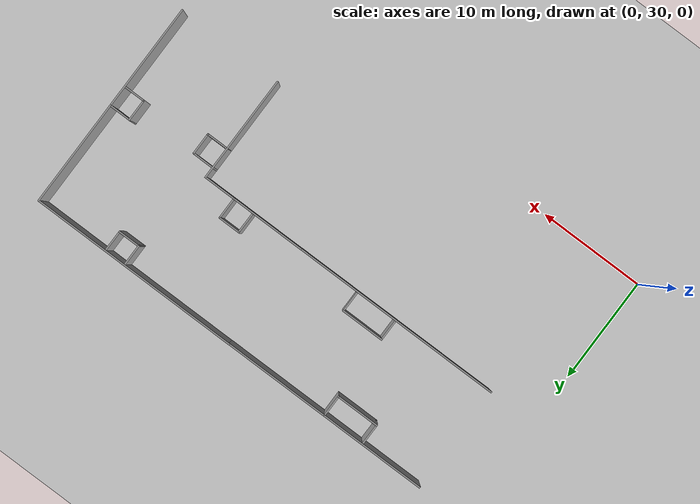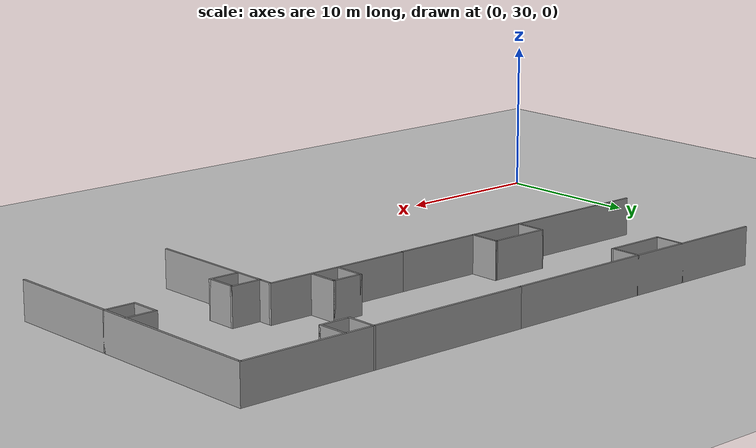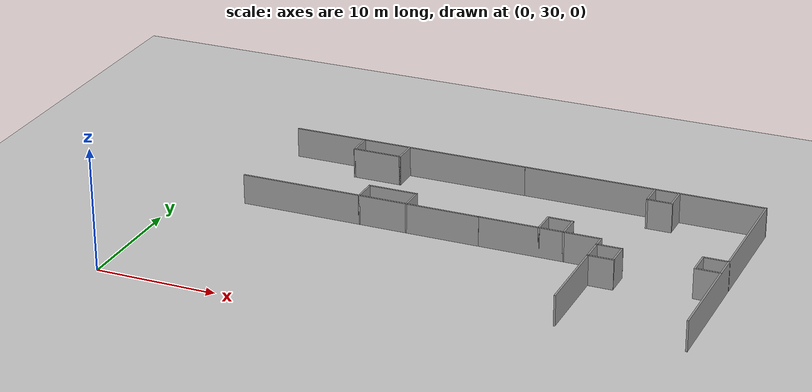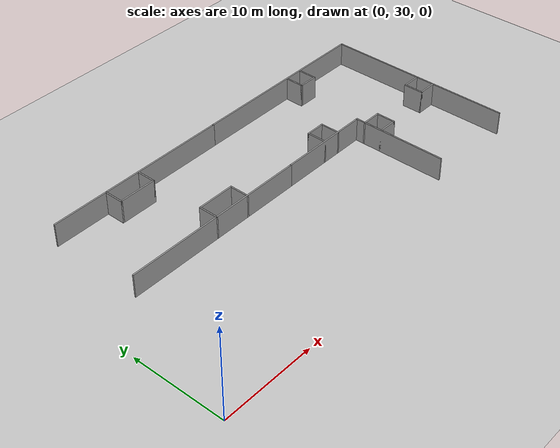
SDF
<sdf version="1.6">
 <world name="default">
  <model name="ground_plane">
   <static>1</static>
   <link name="link">
    <collision name="collision">
     <geometry><plane><normal>0 0 1</normal><size>100 100</size></plane></geometry>
     <surface><friction><ode><mu>100</mu><mu2>50</mu2></ode></friction></surface>
    </collision>
    <visual name="visual">
     <cast_shadows>0</cast_shadows>
     <geometry><plane><normal>0 0 1</normal><size>100 100</size></plane></geometry>
     <material>
      <script><uri>file://media/materials/scripts/gazebo.material</uri><name>Gazebo/Grey</name></script>
     </material>
    </visual>
   </link>
  </model>
  <model name="part_l_2">
   <link name="Wall_27">
    <pose>-0.000179 -10 0 0 -0 0</pose>
    <visual name="Wall_27_Visual">
     <pose>0 0 1.25 0 -0 0</pose>
     <geometry><box><size>20.15 0.15 2.5</size></box></geometry>
     <material>
      <script><uri>file://media/materials/scripts/gazebo.material</uri><name>Gazebo/Grey</name></script>
      <ambient>1 1 1 1</ambient>
      <diffuse>0.7 0.7 0.7 1</diffuse>
      <specular>0.01 0.01 0.01 1</specular>
      <emissive>0 0 0 1</emissive>
     </material>
    </visual>
    <collision name="Wall_27_Collision">
     <pose>0 0 1.25 0 -0 0</pose>
     <geometry><box><size>20.15 0.15 2.5</size></box></geometry>
     <surface>
      <friction>
       <ode><mu>1</mu><mu2>1</mu2><fdir1>0 0 0</fdir1><slip1>0</slip1><slip2>0</slip2></ode>
       <torsional>
        <coefficient>1</coefficient>
        <patch_radius>0</patch_radius>
        <surface_radius>0</surface_radius>
        <use_patch_radius>1</use_patch_radius>
        <ode><slip>0</slip></ode>
       </torsional>
      </friction>
      <bounce><restitution_coefficient>0</restitution_coefficient><threshold>1e+06</threshold></bounce>
      <contact>
       <collide_without_contact>0</collide_without_contact>
       <collide_without_contact_bitmask>1</collide_without_contact_bitmask>
       <collide_bitmask>1</collide_bitmask>
       <ode>
        <soft_cfm>0</soft_cfm>
        <soft_erp>0.2</soft_erp>
        <kp>1e+13</kp>
        <kd>1</kd>
        <max_vel>0.01</max_vel>
        <min_depth>0</min_depth>
       </ode>
       <bullet>
        <split_impulse>1</split_impulse>
        <split_impulse_penetration_threshold>-0.01</split_impulse_penetration_threshold>
        <soft_cfm>0</soft_cfm>
        <soft_erp>0.2</soft_erp>
        <kp>1e+13</kp>
        <kd>1</kd>
       </bullet>
      </contact>
     </surface>
    </collision>
   </link>
   <link name="Wall_28">
    <pose>9.99982 0 0 0 -0 1.5708</pose>
    <visual name="Wall_28_Visual">
     <pose>0 0 1.25 0 -0 0</pose>
     <geometry><box><size>20.15 0.15 2.5</size></box></geometry>
     <material>
      <script><uri>file://media/materials/scripts/gazebo.material</uri><name>Gazebo/Grey</name></script>
      <ambient>1 1 1 1</ambient>
      <diffuse>0.7 0.7 0.7 1</diffuse>
      <specular>0.01 0.01 0.01 1</specular>
      <emissive>0 0 0 1</emissive>
     </material>
    </visual>
    <collision name="Wall_28_Collision">
     <pose>0 0 1.25 0 -0 0</pose>
     <geometry><box><size>20.15 0.15 2.5</size></box></geometry>
     <surface>
      <friction>
       <ode><mu>1</mu><mu2>1</mu2><fdir1>0 0 0</fdir1><slip1>0</slip1><slip2>0</slip2></ode>
       <torsional>
        <coefficient>1</coefficient>
        <patch_radius>0</patch_radius>
        <surface_radius>0</surface_radius>
        <use_patch_radius>1</use_patch_radius>
        <ode><slip>0</slip></ode>
       </torsional>
      </friction>
      <bounce><restitution_coefficient>0</restitution_coefficient><threshold>1e+06</threshold></bounce>
      <contact>
       <collide_without_contact>0</collide_without_contact>
       <collide_without_contact_bitmask>1</collide_without_contact_bitmask>
       <collide_bitmask>1</collide_bitmask>
       <ode>
        <soft_cfm>0</soft_cfm>
        <soft_erp>0.2</soft_erp>
        <kp>1e+13</kp>
        <kd>1</kd>
        <max_vel>0.01</max_vel>
        <min_depth>0</min_depth>
       </ode>
       <bullet>
        <split_impulse>1</split_impulse>
        <split_impulse_penetration_threshold>-0.01</split_impulse_penetration_threshold>
        <soft_cfm>0</soft_cfm>
        <soft_erp>0.2</soft_erp>
        <kp>1e+13</kp>
        <kd>1</kd>
       </bullet>
      </contact>
     </surface>
    </collision>
   </link>
   <link name="Wall_30">
    <pose>-5.00018 0 0 0 -0 0</pose>
    <visual name="Wall_30_Visual">
     <pose>0 0 1.25 0 -0 0</pose>
     <geometry><box><size>10.15 0.15 2.5</size></box></geometry>
     <material>
      <script><uri>file://media/materials/scripts/gazebo.material</uri><name>Gazebo/Grey</name></script>
      <ambient>1 1 1 1</ambient>
      <diffuse>0.7 0.7 0.7 1</diffuse>
      <specular>0.01 0.01 0.01 1</specular>
      <emissive>0 0 0 1</emissive>
     </material>
    </visual>
    <collision name="Wall_30_Collision">
     <pose>0 0 1.25 0 -0 0</pose>
     <geometry><box><size>10.15 0.15 2.5</size></box></geometry>
     <surface>
      <friction>
       <ode><mu>1</mu><mu2>1</mu2><fdir1>0 0 0</fdir1><slip1>0</slip1><slip2>0</slip2></ode>
       <torsional>
        <coefficient>1</coefficient>
        <patch_radius>0</patch_radius>
        <surface_radius>0</surface_radius>
        <use_patch_radius>1</use_patch_radius>
        <ode><slip>0</slip></ode>
       </torsional>
      </friction>
      <bounce><restitution_coefficient>0</restitution_coefficient><threshold>1e+06</threshold></bounce>
      <contact>
       <collide_without_contact>0</collide_without_contact>
       <collide_without_contact_bitmask>1</collide_without_contact_bitmask>
       <collide_bitmask>1</collide_bitmask>
       <ode>
        <soft_cfm>0</soft_cfm>
        <soft_erp>0.2</soft_erp>
        <kp>1e+13</kp>
        <kd>1</kd>
        <max_vel>0.01</max_vel>
        <min_depth>0</min_depth>
       </ode>
       <bullet>
        <split_impulse>1</split_impulse>
        <split_impulse_penetration_threshold>-0.01</split_impulse_penetration_threshold>
        <soft_cfm>0</soft_cfm>
        <soft_erp>0.2</soft_erp>
        <kp>1e+13</kp>
        <kd>1</kd>
       </bullet>
      </contact>
     </surface>
    </collision>
   </link>
   <link name="Wall_31">
    <pose>-0.000179 5 0 0 -0 1.5708</pose>
    <visual name="Wall_31_Visual">
     <pose>0 0 1.25 0 -0 0</pose>
     <geometry><box><size>10.15 0.15 2.5</size></box></geometry>
     <material>
      <script><uri>file://media/materials/scripts/gazebo.material</uri><name>Gazebo/Grey</name></script>
      <ambient>1 1 1 1</ambient>
      <diffuse>0.7 0.7 0.7 1</diffuse>
      <specular>0.01 0.01 0.01 1</specular>
      <emissive>0 0 0 1</emissive>
     </material>
    </visual>
    <collision name="Wall_31_Collision">
     <pose>0 0 1.25 0 -0 0</pose>
     <geometry><box><size>10.15 0.15 2.5</size></box></geometry>
     <surface>
      <friction>
       <ode><mu>1</mu><mu2>1</mu2><fdir1>0 0 0</fdir1><slip1>0</slip1><slip2>0</slip2></ode>
       <torsional>
        <coefficient>1</coefficient>
        <patch_radius>0</patch_radius>
        <surface_radius>0</surface_radius>
        <use_patch_radius>1</use_patch_radius>
        <ode><slip>0</slip></ode>
       </torsional>
      </friction>
      <bounce><restitution_coefficient>0</restitution_coefficient><threshold>1e+06</threshold></bounce>
      <contact>
       <collide_without_contact>0</collide_without_contact>
       <collide_without_contact_bitmask>1</collide_without_contact_bitmask>
       <collide_bitmask>1</collide_bitmask>
       <ode>
        <soft_cfm>0</soft_cfm>
        <soft_erp>0.2</soft_erp>
        <kp>1e+13</kp>
        <kd>1</kd>
        <max_vel>0.01</max_vel>
        <min_depth>0</min_depth>
       </ode>
       <bullet>
        <split_impulse>1</split_impulse>
        <split_impulse_penetration_threshold>-0.01</split_impulse_penetration_threshold>
        <soft_cfm>0</soft_cfm>
        <soft_erp>0.2</soft_erp>
        <kp>1e+13</kp>
        <kd>1</kd>
       </bullet>
      </contact>
     </surface>
    </collision>
   </link>
   <link name="Wall_33">
    <pose>-2.00018 -9 0 0 -0 1.5708</pose>
    <visual name="Wall_33_Visual">
     <pose>0 0 1.25 0 -0 0</pose>
     <geometry><box><size>2.15 0.15 2.5</size></box></geometry>
     <material>
      <script><uri>file://media/materials/scripts/gazebo.material</uri><name>Gazebo/Grey</name></script>
      <ambient>1 1 1 1</ambient>
      <diffuse>0.7 0.7 0.7 1</diffuse>
      <specular>0.01 0.01 0.01 1</specular>
      <emissive>0 0 0 1</emissive>
     </material>
    </visual>
    <collision name="Wall_33_Collision">
     <pose>0 0 1.25 0 -0 0</pose>
     <geometry><box><size>2.15 0.15 2.5</size></box></geometry>
     <surface>
      <friction>
       <ode><mu>1</mu><mu2>1</mu2><fdir1>0 0 0</fdir1><slip1>0</slip1><slip2>0</slip2></ode>
       <torsional>
        <coefficient>1</coefficient>
        <patch_radius>0</patch_radius>
        <surface_radius>0</surface_radius>
        <use_patch_radius>1</use_patch_radius>
        <ode><slip>0</slip></ode>
       </torsional>
      </friction>
      <bounce><restitution_coefficient>0</restitution_coefficient><threshold>1e+06</threshold></bounce>
      <contact>
       <collide_without_contact>0</collide_without_contact>
       <collide_without_contact_bitmask>1</collide_without_contact_bitmask>
       <collide_bitmask>1</collide_bitmask>
       <ode>
        <soft_cfm>0</soft_cfm>
        <soft_erp>0.2</soft_erp>
        <kp>1e+13</kp>
        <kd>1</kd>
        <max_vel>0.01</max_vel>
        <min_depth>0</min_depth>
       </ode>
       <bullet>
        <split_impulse>1</split_impulse>
        <split_impulse_penetration_threshold>-0.01</split_impulse_penetration_threshold>
        <soft_cfm>0</soft_cfm>
        <soft_erp>0.2</soft_erp>
        <kp>1e+13</kp>
        <kd>1</kd>
       </bullet>
      </contact>
     </surface>
    </collision>
   </link>
   <link name="Wall_34">
    <pose>-1.00018 -8 0 0 -0 0</pose>
    <visual name="Wall_34_Visual">
     <pose>0 0 1.25 0 -0 0</pose>
     <geometry><box><size>2.15 0.15 2.5</size></box></geometry>
     <material>
      <script><uri>file://media/materials/scripts/gazebo.material</uri><name>Gazebo/Grey</name></script>
      <ambient>1 1 1 1</ambient>
      <diffuse>0.7 0.7 0.7 1</diffuse>
      <specular>0.01 0.01 0.01 1</specular>
      <emissive>0 0 0 1</emissive>
     </material>
    </visual>
    <collision name="Wall_34_Collision">
     <pose>0 0 1.25 0 -0 0</pose>
     <geometry><box><size>2.15 0.15 2.5</size></box></geometry>
     <surface>
      <friction>
       <ode><mu>1</mu><mu2>1</mu2><fdir1>0 0 0</fdir1><slip1>0</slip1><slip2>0</slip2></ode>
       <torsional>
        <coefficient>1</coefficient>
        <patch_radius>0</patch_radius>
        <surface_radius>0</surface_radius>
        <use_patch_radius>1</use_patch_radius>
        <ode><slip>0</slip></ode>
       </torsional>
      </friction>
      <bounce><restitution_coefficient>0</restitution_coefficient><threshold>1e+06</threshold></bounce>
      <contact>
       <collide_without_contact>0</collide_without_contact>
       <collide_without_contact_bitmask>1</collide_without_contact_bitmask>
       <collide_bitmask>1</collide_bitmask>
       <ode>
        <soft_cfm>0</soft_cfm>
        <soft_erp>0.2</soft_erp>
        <kp>1e+13</kp>
        <kd>1</kd>
        <max_vel>0.01</max_vel>
        <min_depth>0</min_depth>
       </ode>
       <bullet>
        <split_impulse>1</split_impulse>
        <split_impulse_penetration_threshold>-0.01</split_impulse_penetration_threshold>
        <soft_cfm>0</soft_cfm>
        <soft_erp>0.2</soft_erp>
        <kp>1e+13</kp>
        <kd>1</kd>
       </bullet>
      </contact>
     </surface>
    </collision>
   </link>
   <link name="Wall_35">
    <pose>-0.000179 -9 0 0 0 -1.5708</pose>
    <visual name="Wall_35_Visual">
     <pose>0 0 1.25 0 -0 0</pose>
     <geometry><box><size>2.15 0.15 2.5</size></box></geometry>
     <material>
      <script><uri>file://media/materials/scripts/gazebo.material</uri><name>Gazebo/Grey</name></script>
      <ambient>1 1 1 1</ambient>
      <diffuse>0.7 0.7 0.7 1</diffuse>
      <specular>0.01 0.01 0.01 1</specular>
      <emissive>0 0 0 1</emissive>
     </material>
    </visual>
    <collision name="Wall_35_Collision">
     <pose>0 0 1.25 0 -0 0</pose>
     <geometry><box><size>2.15 0.15 2.5</size></box></geometry>
     <surface>
      <friction>
       <ode><mu>1</mu><mu2>1</mu2><fdir1>0 0 0</fdir1><slip1>0</slip1><slip2>0</slip2></ode>
       <torsional>
        <coefficient>1</coefficient>
        <patch_radius>0</patch_radius>
        <surface_radius>0</surface_radius>
        <use_patch_radius>1</use_patch_radius>
        <ode><slip>0</slip></ode>
       </torsional>
      </friction>
      <bounce><restitution_coefficient>0</restitution_coefficient><threshold>1e+06</threshold></bounce>
      <contact>
       <collide_without_contact>0</collide_without_contact>
       <collide_without_contact_bitmask>1</collide_without_contact_bitmask>
       <collide_bitmask>1</collide_bitmask>
       <ode>
        <soft_cfm>0</soft_cfm>
        <soft_erp>0.2</soft_erp>
        <kp>1e+13</kp>
        <kd>1</kd>
        <max_vel>0.01</max_vel>
        <min_depth>0</min_depth>
       </ode>
       <bullet>
        <split_impulse>1</split_impulse>
        <split_impulse_penetration_threshold>-0.01</split_impulse_penetration_threshold>
        <soft_cfm>0</soft_cfm>
        <soft_erp>0.2</soft_erp>
        <kp>1e+13</kp>
        <kd>1</kd>
       </bullet>
      </contact>
     </surface>
    </collision>
   </link>
   <link name="Wall_37">
    <pose>8.99982 -1 0 0 -0 3.14159</pose>
    <visual name="Wall_37_Visual">
     <pose>0 0 1.25 0 -0 0</pose>
     <geometry><box><size>2.15072 0.15 2.5</size></box></geometry>
     <material>
      <script><uri>file://media/materials/scripts/gazebo.material</uri><name>Gazebo/Grey</name></script>
      <ambient>1 1 1 1</ambient>
      <diffuse>0.7 0.7 0.7 1</diffuse>
      <specular>0.01 0.01 0.01 1</specular>
      <emissive>0 0 0 1</emissive>
     </material>
    </visual>
    <collision name="Wall_37_Collision">
     <pose>0 0 1.25 0 -0 0</pose>
     <geometry><box><size>2.15072 0.15 2.5</size></box></geometry>
     <surface>
      <friction>
       <ode><mu>1</mu><mu2>1</mu2><fdir1>0 0 0</fdir1><slip1>0</slip1><slip2>0</slip2></ode>
       <torsional>
        <coefficient>1</coefficient>
        <patch_radius>0</patch_radius>
        <surface_radius>0</surface_radius>
        <use_patch_radius>1</use_patch_radius>
        <ode><slip>0</slip></ode>
       </torsional>
      </friction>
      <bounce><restitution_coefficient>0</restitution_coefficient><threshold>1e+06</threshold></bounce>
      <contact>
       <collide_without_contact>0</collide_without_contact>
       <collide_without_contact_bitmask>1</collide_without_contact_bitmask>
       <collide_bitmask>1</collide_bitmask>
       <ode>
        <soft_cfm>0</soft_cfm>
        <soft_erp>0.2</soft_erp>
        <kp>1e+13</kp>
        <kd>1</kd>
        <max_vel>0.01</max_vel>
        <min_depth>0</min_depth>
       </ode>
       <bullet>
        <split_impulse>1</split_impulse>
        <split_impulse_penetration_threshold>-0.01</split_impulse_penetration_threshold>
        <soft_cfm>0</soft_cfm>
        <soft_erp>0.2</soft_erp>
        <kp>1e+13</kp>
        <kd>1</kd>
       </bullet>
      </contact>
     </surface>
    </collision>
   </link>
   <link name="Wall_38">
    <pose>7.99982 -2 0 0 0 -1.5708</pose>
    <visual name="Wall_38_Visual">
     <pose>0 0 1.25 0 -0 0</pose>
     <geometry><box><size>2.15 0.15 2.5</size></box></geometry>
     <material>
      <script><uri>file://media/materials/scripts/gazebo.material</uri><name>Gazebo/Grey</name></script>
      <ambient>1 1 1 1</ambient>
      <diffuse>0.7 0.7 0.7 1</diffuse>
      <specular>0.01 0.01 0.01 1</specular>
      <emissive>0 0 0 1</emissive>
     </material>
    </visual>
    <collision name="Wall_38_Collision">
     <pose>0 0 1.25 0 -0 0</pose>
     <geometry><box><size>2.15 0.15 2.5</size></box></geometry>
     <surface>
      <friction>
       <ode><mu>1</mu><mu2>1</mu2><fdir1>0 0 0</fdir1><slip1>0</slip1><slip2>0</slip2></ode>
       <torsional>
        <coefficient>1</coefficient>
        <patch_radius>0</patch_radius>
        <surface_radius>0</surface_radius>
        <use_patch_radius>1</use_patch_radius>
        <ode><slip>0</slip></ode>
       </torsional>
      </friction>
      <bounce><restitution_coefficient>0</restitution_coefficient><threshold>1e+06</threshold></bounce>
      <contact>
       <collide_without_contact>0</collide_without_contact>
       <collide_without_contact_bitmask>1</collide_without_contact_bitmask>
       <collide_bitmask>1</collide_bitmask>
       <ode>
        <soft_cfm>0</soft_cfm>
        <soft_erp>0.2</soft_erp>
        <kp>1e+13</kp>
        <kd>1</kd>
        <max_vel>0.01</max_vel>
        <min_depth>0</min_depth>
       </ode>
       <bullet>
        <split_impulse>1</split_impulse>
        <split_impulse_penetration_threshold>-0.01</split_impulse_penetration_threshold>
        <soft_cfm>0</soft_cfm>
        <soft_erp>0.2</soft_erp>
        <kp>1e+13</kp>
        <kd>1</kd>
       </bullet>
      </contact>
     </surface>
    </collision>
   </link>
   <link name="Wall_39">
    <pose>8.99982 -3 0 0 -0 0</pose>
    <visual name="Wall_39_Visual">
     <pose>0 0 1.25 0 -0 0</pose>
     <geometry><box><size>2.15 0.15 2.5</size></box></geometry>
     <material>
      <script><uri>file://media/materials/scripts/gazebo.material</uri><name>Gazebo/Grey</name></script>
      <ambient>1 1 1 1</ambient>
      <diffuse>0.7 0.7 0.7 1</diffuse>
      <specular>0.01 0.01 0.01 1</specular>
      <emissive>0 0 0 1</emissive>
     </material>
    </visual>
    <collision name="Wall_39_Collision">
     <pose>0 0 1.25 0 -0 0</pose>
     <geometry><box><size>2.15 0.15 2.5</size></box></geometry>
     <surface>
      <friction>
       <ode><mu>1</mu><mu2>1</mu2><fdir1>0 0 0</fdir1><slip1>0</slip1><slip2>0</slip2></ode>
       <torsional>
        <coefficient>1</coefficient>
        <patch_radius>0</patch_radius>
        <surface_radius>0</surface_radius>
        <use_patch_radius>1</use_patch_radius>
        <ode><slip>0</slip></ode>
       </torsional>
      </friction>
      <bounce><restitution_coefficient>0</restitution_coefficient><threshold>1e+06</threshold></bounce>
      <contact>
       <collide_without_contact>0</collide_without_contact>
       <collide_without_contact_bitmask>1</collide_without_contact_bitmask>
       <collide_bitmask>1</collide_bitmask>
       <ode>
        <soft_cfm>0</soft_cfm>
        <soft_erp>0.2</soft_erp>
        <kp>1e+13</kp>
        <kd>1</kd>
        <max_vel>0.01</max_vel>
        <min_depth>0</min_depth>
       </ode>
       <bullet>
        <split_impulse>1</split_impulse>
        <split_impulse_penetration_threshold>-0.01</split_impulse_penetration_threshold>
        <soft_cfm>0</soft_cfm>
        <soft_erp>0.2</soft_erp>
        <kp>1e+13</kp>
        <kd>1</kd>
       </bullet>
      </contact>
     </surface>
    </collision>
   </link>
   <link name="Wall_41">
    <pose>0.999821 5 0 0 -0 0</pose>
    <visual name="Wall_41_Visual">
     <pose>0 0 1.25 0 -0 0</pose>
     <geometry><box><size>2.15 0.15 2.5</size></box></geometry>
     <material>
      <script><uri>file://media/materials/scripts/gazebo.material</uri><name>Gazebo/Grey</name></script>
      <ambient>1 1 1 1</ambient>
      <diffuse>0.7 0.7 0.7 1</diffuse>
      <specular>0.01 0.01 0.01 1</specular>
      <emissive>0 0 0 1</emissive>
     </material>
    </visual>
    <collision name="Wall_41_Collision">
     <pose>0 0 1.25 0 -0 0</pose>
     <geometry><box><size>2.15 0.15 2.5</size></box></geometry>
     <surface>
      <friction>
       <ode><mu>1</mu><mu2>1</mu2><fdir1>0 0 0</fdir1><slip1>0</slip1><slip2>0</slip2></ode>
       <torsional>
        <coefficient>1</coefficient>
        <patch_radius>0</patch_radius>
        <surface_radius>0</surface_radius>
        <use_patch_radius>1</use_patch_radius>
        <ode><slip>0</slip></ode>
       </torsional>
      </friction>
      <bounce><restitution_coefficient>0</restitution_coefficient><threshold>1e+06</threshold></bounce>
      <contact>
       <collide_without_contact>0</collide_without_contact>
       <collide_without_contact_bitmask>1</collide_without_contact_bitmask>
       <collide_bitmask>1</collide_bitmask>
       <ode>
        <soft_cfm>0</soft_cfm>
        <soft_erp>0.2</soft_erp>
        <kp>1e+13</kp>
        <kd>1</kd>
        <max_vel>0.01</max_vel>
        <min_depth>0</min_depth>
       </ode>
       <bullet>
        <split_impulse>1</split_impulse>
        <split_impulse_penetration_threshold>-0.01</split_impulse_penetration_threshold>
        <soft_cfm>0</soft_cfm>
        <soft_erp>0.2</soft_erp>
        <kp>1e+13</kp>
        <kd>1</kd>
       </bullet>
      </contact>
     </surface>
    </collision>
   </link>
   <link name="Wall_42">
    <pose>1.99982 4 0 0 0 -1.5708</pose>
    <visual name="Wall_42_Visual">
     <pose>0 0 1.25 0 -0 0</pose>
     <geometry><box><size>2.15 0.15 2.5</size></box></geometry>
     <material>
      <script><uri>file://media/materials/scripts/gazebo.material</uri><name>Gazebo/Grey</name></script>
      <ambient>1 1 1 1</ambient>
      <diffuse>0.7 0.7 0.7 1</diffuse>
      <specular>0.01 0.01 0.01 1</specular>
      <emissive>0 0 0 1</emissive>
     </material>
    </visual>
    <collision name="Wall_42_Collision">
     <pose>0 0 1.25 0 -0 0</pose>
     <geometry><box><size>2.15 0.15 2.5</size></box></geometry>
     <surface>
      <friction>
       <ode><mu>1</mu><mu2>1</mu2><fdir1>0 0 0</fdir1><slip1>0</slip1><slip2>0</slip2></ode>
       <torsional>
        <coefficient>1</coefficient>
        <patch_radius>0</patch_radius>
        <surface_radius>0</surface_radius>
        <use_patch_radius>1</use_patch_radius>
        <ode><slip>0</slip></ode>
       </torsional>
      </friction>
      <bounce><restitution_coefficient>0</restitution_coefficient><threshold>1e+06</threshold></bounce>
      <contact>
       <collide_without_contact>0</collide_without_contact>
       <collide_without_contact_bitmask>1</collide_without_contact_bitmask>
       <collide_bitmask>1</collide_bitmask>
       <ode>
        <soft_cfm>0</soft_cfm>
        <soft_erp>0.2</soft_erp>
        <kp>1e+13</kp>
        <kd>1</kd>
        <max_vel>0.01</max_vel>
        <min_depth>0</min_depth>
       </ode>
       <bullet>
        <split_impulse>1</split_impulse>
        <split_impulse_penetration_threshold>-0.01</split_impulse_penetration_threshold>
        <soft_cfm>0</soft_cfm>
        <soft_erp>0.2</soft_erp>
        <kp>1e+13</kp>
        <kd>1</kd>
       </bullet>
      </contact>
     </surface>
    </collision>
   </link>
   <link name="Wall_43">
    <pose>0.999821 3 0 0 -0 3.14159</pose>
    <visual name="Wall_43_Visual">
     <pose>0 0 1.25 0 -0 0</pose>
     <geometry><box><size>2.15 0.15 2.5</size></box></geometry>
     <material>
      <script><uri>file://media/materials/scripts/gazebo.material</uri><name>Gazebo/Grey</name></script>
      <ambient>1 1 1 1</ambient>
      <diffuse>0.7 0.7 0.7 1</diffuse>
      <specular>0.01 0.01 0.01 1</specular>
      <emissive>0 0 0 1</emissive>
     </material>
    </visual>
    <collision name="Wall_43_Collision">
     <pose>0 0 1.25 0 -0 0</pose>
     <geometry><box><size>2.15 0.15 2.5</size></box></geometry>
     <surface>
      <friction>
       <ode><mu>1</mu><mu2>1</mu2><fdir1>0 0 0</fdir1><slip1>0</slip1><slip2>0</slip2></ode>
       <torsional>
        <coefficient>1</coefficient>
        <patch_radius>0</patch_radius>
        <surface_radius>0</surface_radius>
        <use_patch_radius>1</use_patch_radius>
        <ode><slip>0</slip></ode>
       </torsional>
      </friction>
      <bounce><restitution_coefficient>0</restitution_coefficient><threshold>1e+06</threshold></bounce>
      <contact>
       <collide_without_contact>0</collide_without_contact>
       <collide_without_contact_bitmask>1</collide_without_contact_bitmask>
       <collide_bitmask>1</collide_bitmask>
       <ode>
        <soft_cfm>0</soft_cfm>
        <soft_erp>0.2</soft_erp>
        <kp>1e+13</kp>
        <kd>1</kd>
        <max_vel>0.01</max_vel>
        <min_depth>0</min_depth>
       </ode>
       <bullet>
        <split_impulse>1</split_impulse>
        <split_impulse_penetration_threshold>-0.01</split_impulse_penetration_threshold>
        <soft_cfm>0</soft_cfm>
        <soft_erp>0.2</soft_erp>
        <kp>1e+13</kp>
        <kd>1</kd>
       </bullet>
      </contact>
     </surface>
    </collision>
   </link>
   <link name="Wall_45">
    <pose>-3.00018 -1 0 0 0 -1.5708</pose>
    <visual name="Wall_45_Visual">
     <pose>0 0 1.25 0 -0 0</pose>
     <geometry><box><size>2.15 0.15 2.5</size></box></geometry>
     <material>
      <script><uri>file://media/materials/scripts/gazebo.material</uri><name>Gazebo/Grey</name></script>
      <ambient>1 1 1 1</ambient>
      <diffuse>0.7 0.7 0.7 1</diffuse>
      <specular>0.01 0.01 0.01 1</specular>
      <emissive>0 0 0 1</emissive>
     </material>
    </visual>
    <collision name="Wall_45_Collision">
     <pose>0 0 1.25 0 -0 0</pose>
     <geometry><box><size>2.15 0.15 2.5</size></box></geometry>
     <surface>
      <friction>
       <ode><mu>1</mu><mu2>1</mu2><fdir1>0 0 0</fdir1><slip1>0</slip1><slip2>0</slip2></ode>
       <torsional>
        <coefficient>1</coefficient>
        <patch_radius>0</patch_radius>
        <surface_radius>0</surface_radius>
        <use_patch_radius>1</use_patch_radius>
        <ode><slip>0</slip></ode>
       </torsional>
      </friction>
      <bounce><restitution_coefficient>0</restitution_coefficient><threshold>1e+06</threshold></bounce>
      <contact>
       <collide_without_contact>0</collide_without_contact>
       <collide_without_contact_bitmask>1</collide_without_contact_bitmask>
       <collide_bitmask>1</collide_bitmask>
       <ode>
        <soft_cfm>0</soft_cfm>
        <soft_erp>0.2</soft_erp>
        <kp>1e+13</kp>
        <kd>1</kd>
        <max_vel>0.01</max_vel>
        <min_depth>0</min_depth>
       </ode>
       <bullet>
        <split_impulse>1</split_impulse>
        <split_impulse_penetration_threshold>-0.01</split_impulse_penetration_threshold>
        <soft_cfm>0</soft_cfm>
        <soft_erp>0.2</soft_erp>
        <kp>1e+13</kp>
        <kd>1</kd>
       </bullet>
      </contact>
     </surface>
    </collision>
   </link>
   <link name="Wall_46">
    <pose>-2.00018 -2 0 0 -0 0</pose>
    <visual name="Wall_46_Visual">
     <pose>0 0 1.25 0 -0 0</pose>
     <geometry><box><size>2.15 0.15 2.5</size></box></geometry>
     <material>
      <script><uri>file://media/materials/scripts/gazebo.material</uri><name>Gazebo/Grey</name></script>
      <ambient>1 1 1 1</ambient>
      <diffuse>0.7 0.7 0.7 1</diffuse>
      <specular>0.01 0.01 0.01 1</specular>
      <emissive>0 0 0 1</emissive>
     </material>
    </visual>
    <collision name="Wall_46_Collision">
     <pose>0 0 1.25 0 -0 0</pose>
     <geometry><box><size>2.15 0.15 2.5</size></box></geometry>
     <surface>
      <friction>
       <ode><mu>1</mu><mu2>1</mu2><fdir1>0 0 0</fdir1><slip1>0</slip1><slip2>0</slip2></ode>
       <torsional>
        <coefficient>1</coefficient>
        <patch_radius>0</patch_radius>
        <surface_radius>0</surface_radius>
        <use_patch_radius>1</use_patch_radius>
        <ode><slip>0</slip></ode>
       </torsional>
      </friction>
      <bounce><restitution_coefficient>0</restitution_coefficient><threshold>1e+06</threshold></bounce>
      <contact>
       <collide_without_contact>0</collide_without_contact>
       <collide_without_contact_bitmask>1</collide_without_contact_bitmask>
       <collide_bitmask>1</collide_bitmask>
       <ode>
        <soft_cfm>0</soft_cfm>
        <soft_erp>0.2</soft_erp>
        <kp>1e+13</kp>
        <kd>1</kd>
        <max_vel>0.01</max_vel>
        <min_depth>0</min_depth>
       </ode>
       <bullet>
        <split_impulse>1</split_impulse>
        <split_impulse_penetration_threshold>-0.01</split_impulse_penetration_threshold>
        <soft_cfm>0</soft_cfm>
        <soft_erp>0.2</soft_erp>
        <kp>1e+13</kp>
        <kd>1</kd>
       </bullet>
      </contact>
     </surface>
    </collision>
   </link>
   <link name="Wall_47">
    <pose>-1.00018 -0.999 0 0 -0 1.5708</pose>
    <visual name="Wall_47_Visual">
     <pose>0 0 1.25 0 -0 0</pose>
     <geometry><box><size>2.152 0.15 2.5</size></box></geometry>
     <material>
      <script><uri>file://media/materials/scripts/gazebo.material</uri><name>Gazebo/Grey</name></script>
      <ambient>1 1 1 1</ambient>
      <diffuse>0.7 0.7 0.7 1</diffuse>
      <specular>0.01 0.01 0.01 1</specular>
      <emissive>0 0 0 1</emissive>
     </material>
    </visual>
    <collision name="Wall_47_Collision">
     <pose>0 0 1.25 0 -0 0</pose>
     <geometry><box><size>2.152 0.15 2.5</size></box></geometry>
     <surface>
      <friction>
       <ode><mu>1</mu><mu2>1</mu2><fdir1>0 0 0</fdir1><slip1>0</slip1><slip2>0</slip2></ode>
       <torsional>
        <coefficient>1</coefficient>
        <patch_radius>0</patch_radius>
        <surface_radius>0</surface_radius>
        <use_patch_radius>1</use_patch_radius>
        <ode><slip>0</slip></ode>
       </torsional>
      </friction>
      <bounce><restitution_coefficient>0</restitution_coefficient><threshold>1e+06</threshold></bounce>
      <contact>
       <collide_without_contact>0</collide_without_contact>
       <collide_without_contact_bitmask>1</collide_without_contact_bitmask>
       <collide_bitmask>1</collide_bitmask>
       <ode>
        <soft_cfm>0</soft_cfm>
        <soft_erp>0.2</soft_erp>
        <kp>1e+13</kp>
        <kd>1</kd>
        <max_vel>0.01</max_vel>
        <min_depth>0</min_depth>
       </ode>
       <bullet>
        <split_impulse>1</split_impulse>
        <split_impulse_penetration_threshold>-0.01</split_impulse_penetration_threshold>
        <soft_cfm>0</soft_cfm>
        <soft_erp>0.2</soft_erp>
        <kp>1e+13</kp>
        <kd>1</kd>
       </bullet>
      </contact>
     </surface>
    </collision>
   </link>
   <static>1</static>
   <pose>35 45 0 0 -0 1.57</pose>
  </model>
  <model name="part_line_1">
   <link name="Wall_15">
    <pose>0 -5 0 0 -0 0</pose>
    <visual name="Wall_15_Visual">
     <pose>0 0 1.25 0 -0 0</pose>
     <geometry><box><size>20.15 0.15 2.5</size></box></geometry>
     <material>
      <script><uri>file://media/materials/scripts/gazebo.material</uri><name>Gazebo/Grey</name></script>
      <ambient>1 1 1 1</ambient>
      <diffuse>0.7 0.7 0.7 1</diffuse>
      <specular>0.01 0.01 0.01 1</specular>
      <emissive>0 0 0 1</emissive>
     </material>
    </visual>
    <collision name="Wall_15_Collision">
     <pose>0 0 1.25 0 -0 0</pose>
     <geometry><box><size>20.15 0.15 2.5</size></box></geometry>
     <surface>
      <friction>
       <ode><mu>1</mu><mu2>1</mu2><fdir1>0 0 0</fdir1><slip1>0</slip1><slip2>0</slip2></ode>
       <torsional>
        <coefficient>1</coefficient>
        <patch_radius>0</patch_radius>
        <surface_radius>0</surface_radius>
        <use_patch_radius>1</use_patch_radius>
        <ode><slip>0</slip></ode>
       </torsional>
      </friction>
      <bounce><restitution_coefficient>0</restitution_coefficient><threshold>1e+06</threshold></bounce>
      <contact>
       <collide_without_contact>0</collide_without_contact>
       <collide_without_contact_bitmask>1</collide_without_contact_bitmask>
       <collide_bitmask>1</collide_bitmask>
       <ode>
        <soft_cfm>0</soft_cfm>
        <soft_erp>0.2</soft_erp>
        <kp>1e+13</kp>
        <kd>1</kd>
        <max_vel>0.01</max_vel>
        <min_depth>0</min_depth>
       </ode>
       <bullet>
        <split_impulse>1</split_impulse>
        <split_impulse_penetration_threshold>-0.01</split_impulse_penetration_threshold>
        <soft_cfm>0</soft_cfm>
        <soft_erp>0.2</soft_erp>
        <kp>1e+13</kp>
        <kd>1</kd>
       </bullet>
      </contact>
     </surface>
    </collision>
   </link>
   <link name="Wall_17">
    <pose>0 5 0 0 -0 0</pose>
    <visual name="Wall_17_Visual">
     <pose>0 0 1.25 0 -0 0</pose>
     <geometry><box><size>20.15 0.15 2.5</size></box></geometry>
     <material>
      <script><uri>file://media/materials/scripts/gazebo.material</uri><name>Gazebo/Grey</name></script>
      <ambient>1 1 1 1</ambient>
      <diffuse>0.7 0.7 0.7 1</diffuse>
      <specular>0.01 0.01 0.01 1</specular>
      <emissive>0 0 0 1</emissive>
     </material>
    </visual>
    <collision name="Wall_17_Collision">
     <pose>0 0 1.25 0 -0 0</pose>
     <geometry><box><size>20.15 0.15 2.5</size></box></geometry>
     <surface>
      <friction>
       <ode><mu>1</mu><mu2>1</mu2><fdir1>0 0 0</fdir1><slip1>0</slip1><slip2>0</slip2></ode>
       <torsional>
        <coefficient>1</coefficient>
        <patch_radius>0</patch_radius>
        <surface_radius>0</surface_radius>
        <use_patch_radius>1</use_patch_radius>
        <ode><slip>0</slip></ode>
       </torsional>
      </friction>
      <bounce><restitution_coefficient>0</restitution_coefficient><threshold>1e+06</threshold></bounce>
      <contact>
       <collide_without_contact>0</collide_without_contact>
       <collide_without_contact_bitmask>1</collide_without_contact_bitmask>
       <collide_bitmask>1</collide_bitmask>
       <ode>
        <soft_cfm>0</soft_cfm>
        <soft_erp>0.2</soft_erp>
        <kp>1e+13</kp>
        <kd>1</kd>
        <max_vel>0.01</max_vel>
        <min_depth>0</min_depth>
       </ode>
       <bullet>
        <split_impulse>1</split_impulse>
        <split_impulse_penetration_threshold>-0.01</split_impulse_penetration_threshold>
        <soft_cfm>0</soft_cfm>
        <soft_erp>0.2</soft_erp>
        <kp>1e+13</kp>
        <kd>1</kd>
       </bullet>
      </contact>
     </surface>
    </collision>
   </link>
   <link name="Wall_19">
    <pose>-4 4 0 0 0 -1.5708</pose>
    <visual name="Wall_19_Visual">
     <pose>0 0 1.25 0 -0 0</pose>
     <geometry><box><size>2.15 0.15 2.5</size></box></geometry>
     <material>
      <script><uri>file://media/materials/scripts/gazebo.material</uri><name>Gazebo/Grey</name></script>
      <ambient>1 1 1 1</ambient>
      <diffuse>0.7 0.7 0.7 1</diffuse>
      <specular>0.01 0.01 0.01 1</specular>
      <emissive>0 0 0 1</emissive>
     </material>
    </visual>
    <collision name="Wall_19_Collision">
     <pose>0 0 1.25 0 -0 0</pose>
     <geometry><box><size>2.15 0.15 2.5</size></box></geometry>
     <surface>
      <friction>
       <ode><mu>1</mu><mu2>1</mu2><fdir1>0 0 0</fdir1><slip1>0</slip1><slip2>0</slip2></ode>
       <torsional>
        <coefficient>1</coefficient>
        <patch_radius>0</patch_radius>
        <surface_radius>0</surface_radius>
        <use_patch_radius>1</use_patch_radius>
        <ode><slip>0</slip></ode>
       </torsional>
      </friction>
      <bounce><restitution_coefficient>0</restitution_coefficient><threshold>1e+06</threshold></bounce>
      <contact>
       <collide_without_contact>0</collide_without_contact>
       <collide_without_contact_bitmask>1</collide_without_contact_bitmask>
       <collide_bitmask>1</collide_bitmask>
       <ode>
        <soft_cfm>0</soft_cfm>
        <soft_erp>0.2</soft_erp>
        <kp>1e+13</kp>
        <kd>1</kd>
        <max_vel>0.01</max_vel>
        <min_depth>0</min_depth>
       </ode>
       <bullet>
        <split_impulse>1</split_impulse>
        <split_impulse_penetration_threshold>-0.01</split_impulse_penetration_threshold>
        <soft_cfm>0</soft_cfm>
        <soft_erp>0.2</soft_erp>
        <kp>1e+13</kp>
        <kd>1</kd>
       </bullet>
      </contact>
     </surface>
    </collision>
   </link>
   <link name="Wall_20">
    <pose>-2 3 0 0 -0 0</pose>
    <visual name="Wall_20_Visual">
     <pose>0 0 1.25 0 -0 0</pose>
     <geometry><box><size>4.15 0.15 2.5</size></box></geometry>
     <material>
      <script><uri>file://media/materials/scripts/gazebo.material</uri><name>Gazebo/Grey</name></script>
      <ambient>1 1 1 1</ambient>
      <diffuse>0.7 0.7 0.7 1</diffuse>
      <specular>0.01 0.01 0.01 1</specular>
      <emissive>0 0 0 1</emissive>
     </material>
    </visual>
    <collision name="Wall_20_Collision">
     <pose>0 0 1.25 0 -0 0</pose>
     <geometry><box><size>4.15 0.15 2.5</size></box></geometry>
     <surface>
      <friction>
       <ode><mu>1</mu><mu2>1</mu2><fdir1>0 0 0</fdir1><slip1>0</slip1><slip2>0</slip2></ode>
       <torsional>
        <coefficient>1</coefficient>
        <patch_radius>0</patch_radius>
        <surface_radius>0</surface_radius>
        <use_patch_radius>1</use_patch_radius>
        <ode><slip>0</slip></ode>
       </torsional>
      </friction>
      <bounce><restitution_coefficient>0</restitution_coefficient><threshold>1e+06</threshold></bounce>
      <contact>
       <collide_without_contact>0</collide_without_contact>
       <collide_without_contact_bitmask>1</collide_without_contact_bitmask>
       <collide_bitmask>1</collide_bitmask>
       <ode>
        <soft_cfm>0</soft_cfm>
        <soft_erp>0.2</soft_erp>
        <kp>1e+13</kp>
        <kd>1</kd>
        <max_vel>0.01</max_vel>
        <min_depth>0</min_depth>
       </ode>
       <bullet>
        <split_impulse>1</split_impulse>
        <split_impulse_penetration_threshold>-0.01</split_impulse_penetration_threshold>
        <soft_cfm>0</soft_cfm>
        <soft_erp>0.2</soft_erp>
        <kp>1e+13</kp>
        <kd>1</kd>
       </bullet>
      </contact>
     </surface>
    </collision>
   </link>
   <link name="Wall_21">
    <pose>0 4 0 0 -0 1.5708</pose>
    <visual name="Wall_21_Visual">
     <pose>0 0 1.25 0 -0 0</pose>
     <geometry><box><size>2.15 0.15 2.5</size></box></geometry>
     <material>
      <script><uri>file://media/materials/scripts/gazebo.material</uri><name>Gazebo/Grey</name></script>
      <ambient>1 1 1 1</ambient>
      <diffuse>0.7 0.7 0.7 1</diffuse>
      <specular>0.01 0.01 0.01 1</specular>
      <emissive>0 0 0 1</emissive>
     </material>
    </visual>
    <collision name="Wall_21_Collision">
     <pose>0 0 1.25 0 -0 0</pose>
     <geometry><box><size>2.15 0.15 2.5</size></box></geometry>
     <surface>
      <friction>
       <ode><mu>1</mu><mu2>1</mu2><fdir1>0 0 0</fdir1><slip1>0</slip1><slip2>0</slip2></ode>
       <torsional>
        <coefficient>1</coefficient>
        <patch_radius>0</patch_radius>
        <surface_radius>0</surface_radius>
        <use_patch_radius>1</use_patch_radius>
        <ode><slip>0</slip></ode>
       </torsional>
      </friction>
      <bounce><restitution_coefficient>0</restitution_coefficient><threshold>1e+06</threshold></bounce>
      <contact>
       <collide_without_contact>0</collide_without_contact>
       <collide_without_contact_bitmask>1</collide_without_contact_bitmask>
       <collide_bitmask>1</collide_bitmask>
       <ode>
        <soft_cfm>0</soft_cfm>
        <soft_erp>0.2</soft_erp>
        <kp>1e+13</kp>
        <kd>1</kd>
        <max_vel>0.01</max_vel>
        <min_depth>0</min_depth>
       </ode>
       <bullet>
        <split_impulse>1</split_impulse>
        <split_impulse_penetration_threshold>-0.01</split_impulse_penetration_threshold>
        <soft_cfm>0</soft_cfm>
        <soft_erp>0.2</soft_erp>
        <kp>1e+13</kp>
        <kd>1</kd>
       </bullet>
      </contact>
     </surface>
    </collision>
   </link>
   <link name="Wall_23">
    <pose>0 -4 0 0 -0 1.5708</pose>
    <visual name="Wall_23_Visual">
     <pose>0 0 1.25 0 -0 0</pose>
     <geometry><box><size>2.15 0.15 2.5</size></box></geometry>
     <material>
      <script><uri>file://media/materials/scripts/gazebo.material</uri><name>Gazebo/Grey</name></script>
      <ambient>1 1 1 1</ambient>
      <diffuse>0.7 0.7 0.7 1</diffuse>
      <specular>0.01 0.01 0.01 1</specular>
      <emissive>0 0 0 1</emissive>
     </material>
    </visual>
    <collision name="Wall_23_Collision">
     <pose>0 0 1.25 0 -0 0</pose>
     <geometry><box><size>2.15 0.15 2.5</size></box></geometry>
     <surface>
      <friction>
       <ode><mu>1</mu><mu2>1</mu2><fdir1>0 0 0</fdir1><slip1>0</slip1><slip2>0</slip2></ode>
       <torsional>
        <coefficient>1</coefficient>
        <patch_radius>0</patch_radius>
        <surface_radius>0</surface_radius>
        <use_patch_radius>1</use_patch_radius>
        <ode><slip>0</slip></ode>
       </torsional>
      </friction>
      <bounce><restitution_coefficient>0</restitution_coefficient><threshold>1e+06</threshold></bounce>
      <contact>
       <collide_without_contact>0</collide_without_contact>
       <collide_without_contact_bitmask>1</collide_without_contact_bitmask>
       <collide_bitmask>1</collide_bitmask>
       <ode>
        <soft_cfm>0</soft_cfm>
        <soft_erp>0.2</soft_erp>
        <kp>1e+13</kp>
        <kd>1</kd>
        <max_vel>0.01</max_vel>
        <min_depth>0</min_depth>
       </ode>
       <bullet>
        <split_impulse>1</split_impulse>
        <split_impulse_penetration_threshold>-0.01</split_impulse_penetration_threshold>
        <soft_cfm>0</soft_cfm>
        <soft_erp>0.2</soft_erp>
        <kp>1e+13</kp>
        <kd>1</kd>
       </bullet>
      </contact>
     </surface>
    </collision>
   </link>
   <link name="Wall_24">
    <pose>2 -3 0 0 -0 0</pose>
    <visual name="Wall_24_Visual">
     <pose>0 0 1.25 0 -0 0</pose>
     <geometry><box><size>4.15 0.15 2.5</size></box></geometry>
     <material>
      <script><uri>file://media/materials/scripts/gazebo.material</uri><name>Gazebo/Grey</name></script>
      <ambient>1 1 1 1</ambient>
      <diffuse>0.7 0.7 0.7 1</diffuse>
      <specular>0.01 0.01 0.01 1</specular>
      <emissive>0 0 0 1</emissive>
     </material>
    </visual>
    <collision name="Wall_24_Collision">
     <pose>0 0 1.25 0 -0 0</pose>
     <geometry><box><size>4.15 0.15 2.5</size></box></geometry>
     <surface>
      <friction>
       <ode><mu>1</mu><mu2>1</mu2><fdir1>0 0 0</fdir1><slip1>0</slip1><slip2>0</slip2></ode>
       <torsional>
        <coefficient>1</coefficient>
        <patch_radius>0</patch_radius>
        <surface_radius>0</surface_radius>
        <use_patch_radius>1</use_patch_radius>
        <ode><slip>0</slip></ode>
       </torsional>
      </friction>
      <bounce><restitution_coefficient>0</restitution_coefficient><threshold>1e+06</threshold></bounce>
      <contact>
       <collide_without_contact>0</collide_without_contact>
       <collide_without_contact_bitmask>1</collide_without_contact_bitmask>
       <collide_bitmask>1</collide_bitmask>
       <ode>
        <soft_cfm>0</soft_cfm>
        <soft_erp>0.2</soft_erp>
        <kp>1e+13</kp>
        <kd>1</kd>
        <max_vel>0.01</max_vel>
        <min_depth>0</min_depth>
       </ode>
       <bullet>
        <split_impulse>1</split_impulse>
        <split_impulse_penetration_threshold>-0.01</split_impulse_penetration_threshold>
        <soft_cfm>0</soft_cfm>
        <soft_erp>0.2</soft_erp>
        <kp>1e+13</kp>
        <kd>1</kd>
       </bullet>
      </contact>
     </surface>
    </collision>
   </link>
   <link name="Wall_25">
    <pose>4 -4 0 0 0 -1.5708</pose>
    <visual name="Wall_25_Visual">
     <pose>0 0 1.25 0 -0 0</pose>
     <geometry><box><size>2.15 0.15 2.5</size></box></geometry>
     <material>
      <script><uri>file://media/materials/scripts/gazebo.material</uri><name>Gazebo/Grey</name></script>
      <ambient>1 1 1 1</ambient>
      <diffuse>0.7 0.7 0.7 1</diffuse>
      <specular>0.01 0.01 0.01 1</specular>
      <emissive>0 0 0 1</emissive>
     </material>
    </visual>
    <collision name="Wall_25_Collision">
     <pose>0 0 1.25 0 -0 0</pose>
     <geometry><box><size>2.15 0.15 2.5</size></box></geometry>
     <surface>
      <friction>
       <ode><mu>1</mu><mu2>1</mu2><fdir1>0 0 0</fdir1><slip1>0</slip1><slip2>0</slip2></ode>
       <torsional>
        <coefficient>1</coefficient>
        <patch_radius>0</patch_radius>
        <surface_radius>0</surface_radius>
        <use_patch_radius>1</use_patch_radius>
        <ode><slip>0</slip></ode>
       </torsional>
      </friction>
      <bounce><restitution_coefficient>0</restitution_coefficient><threshold>1e+06</threshold></bounce>
      <contact>
       <collide_without_contact>0</collide_without_contact>
       <collide_without_contact_bitmask>1</collide_without_contact_bitmask>
       <collide_bitmask>1</collide_bitmask>
       <ode>
        <soft_cfm>0</soft_cfm>
        <soft_erp>0.2</soft_erp>
        <kp>1e+13</kp>
        <kd>1</kd>
        <max_vel>0.01</max_vel>
        <min_depth>0</min_depth>
       </ode>
       <bullet>
        <split_impulse>1</split_impulse>
        <split_impulse_penetration_threshold>-0.01</split_impulse_penetration_threshold>
        <soft_cfm>0</soft_cfm>
        <soft_erp>0.2</soft_erp>
        <kp>1e+13</kp>
        <kd>1</kd>
       </bullet>
      </contact>
     </surface>
    </collision>
   </link>
   <static>1</static>
   <pose>15 50 0 0 -0 0</pose>
  </model>
 </world>
</sdf>
